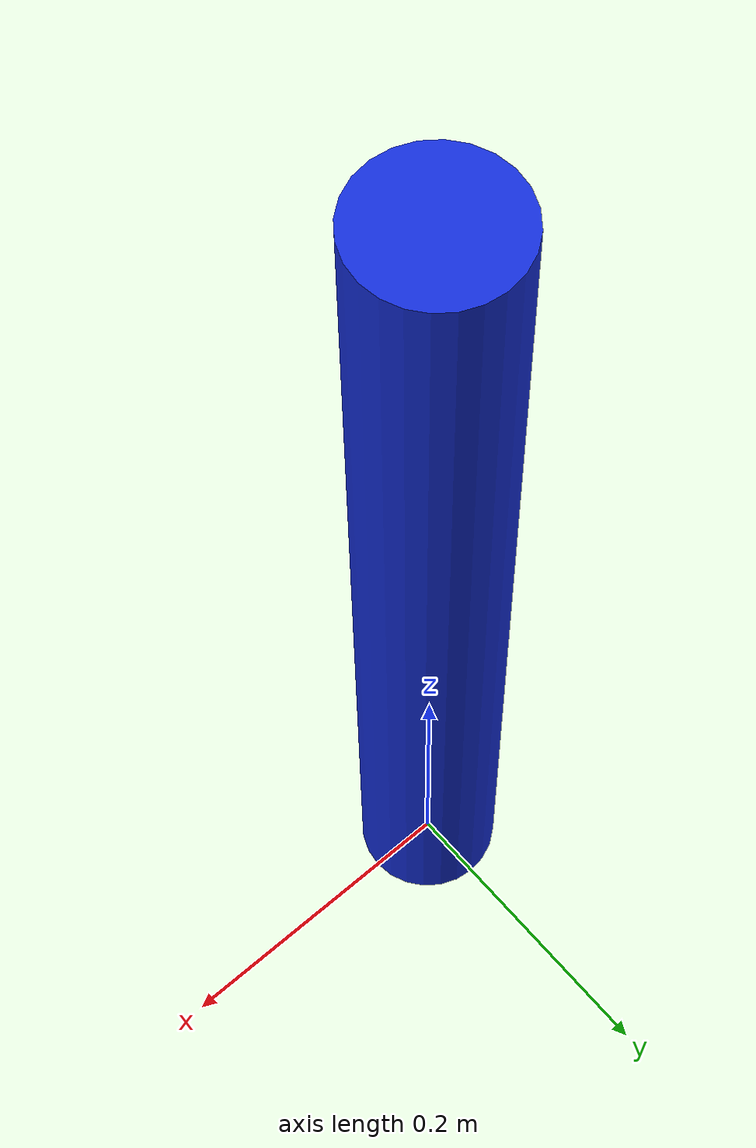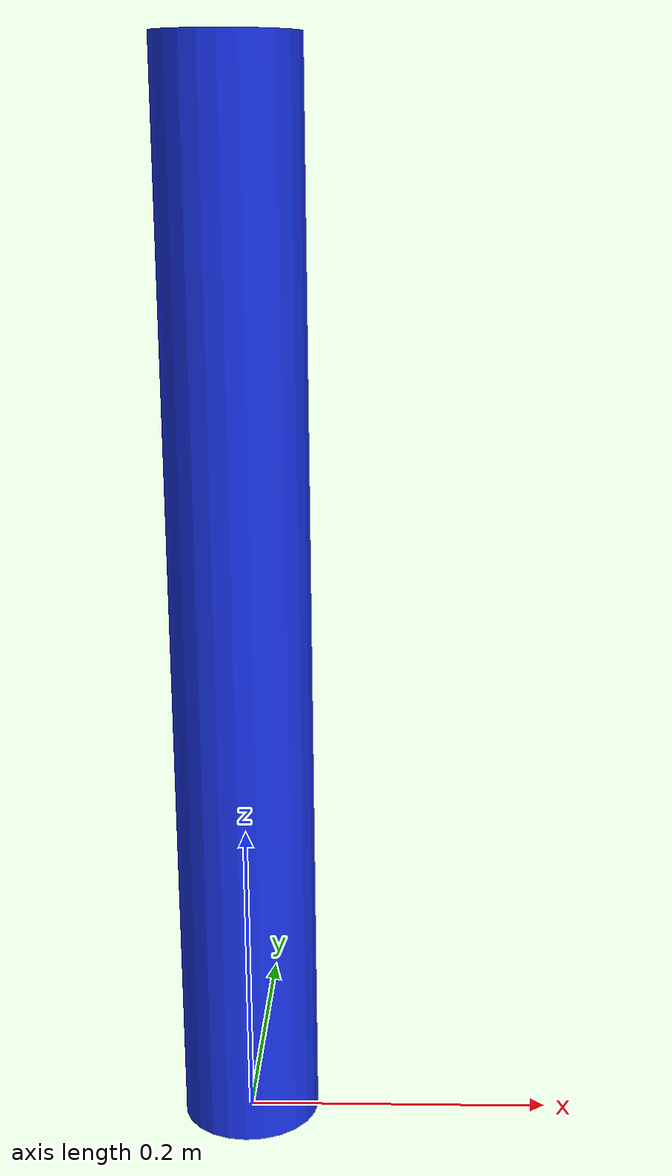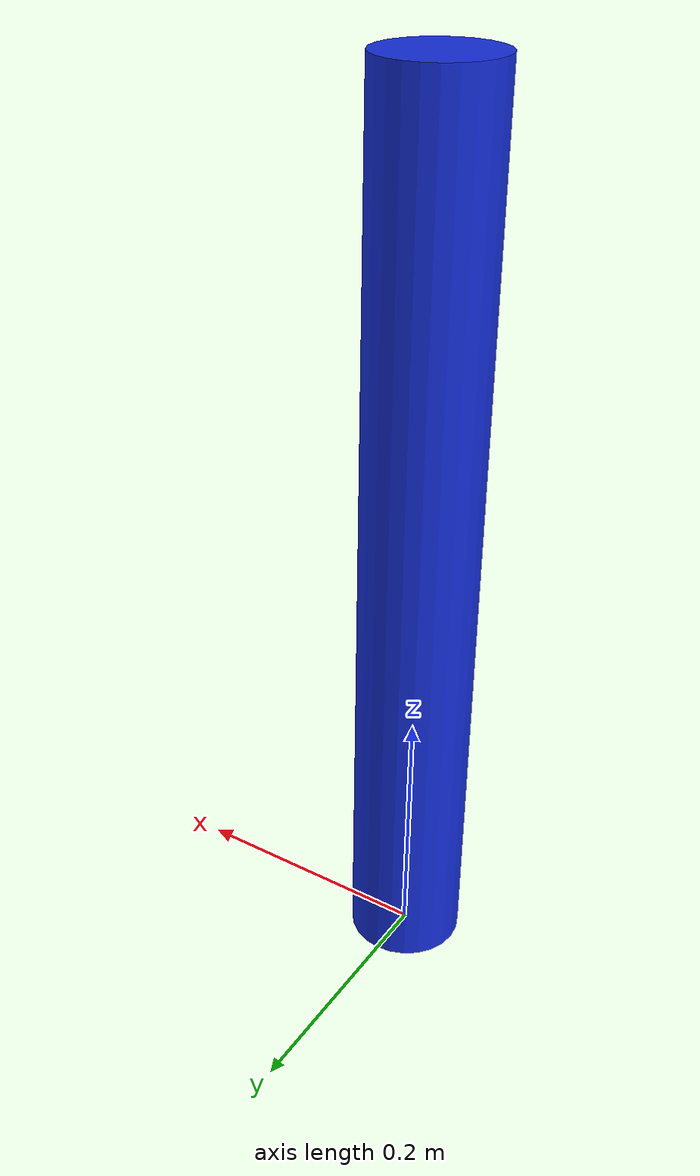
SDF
<?xml version="1.0"?>
<sdf version="1.9">
  <model name="biped_leg">
    <!-- Fortressではset_poseで動かす脚をkinematicにすると接触でロボットを押し返さないため、静的なcollisionとして扱う。 -->
    <static>true</static>
    <link name="leg">
      <pose>0 0 0.35 0 0 0</pose>
      <collision name="collision">
        <geometry>
          <cylinder>
            <radius>0.045</radius>
            <length>0.70</length>
          </cylinder>
        </geometry>
      </collision>
      <visual name="visual">
        <!-- 536870913 = GUI表示bit(1) + LiDAR専用bit(0x20000000)。
             デバッグ用の脚円柱はGazebo GUIにも/scanにも出す。 -->
        <visibility_flags>536870913</visibility_flags>
        <geometry>
          <cylinder>
            <radius>0.045</radius>
            <length>0.70</length>
          </cylinder>
        </geometry>
        <material>
          <ambient>0.08 0.18 0.85 1</ambient>
          <diffuse>0.08 0.18 0.85 1</diffuse>
        </material>
      </visual>
    </link>
  </model>
</sdf>
